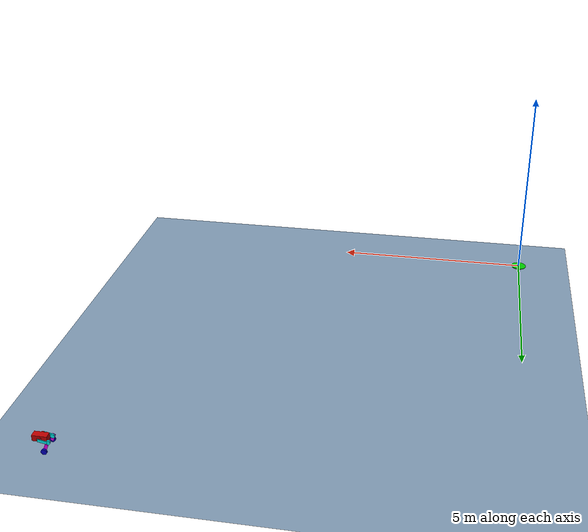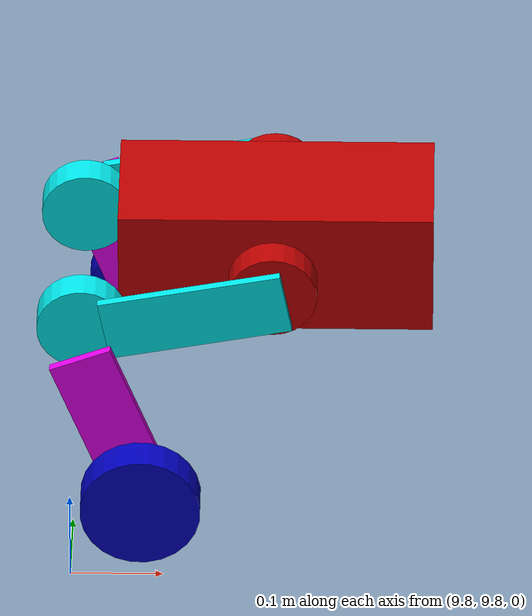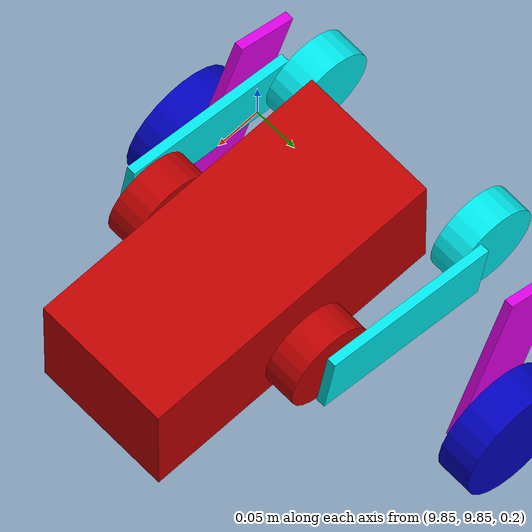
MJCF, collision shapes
<mujoco model="arx7">
  <compiler angle="radian" meshdir="./meshes/"/>
  <option timestep="0.002" integrator="RK4" gravity="0 0 -9.806" solver="Newton" noslip_iterations="0"/>
  <size njmax="10000" nconmax="10000"/>
  <default>
    <geom contype="1" conaffinity="1" rgba="0.5 0.6 0.7 1" margin="0.001" group="0"/>
    <motor gear="20" ctrllimited="true" ctrlrange="-100 100" />
    <position gear="10" ctrllimited="true" kp="5"/>
    <joint limited="true" frictionloss="0.5" damping="45" armature="0.1"/>
  </default>

  <asset>
    <mesh name="base_link" file="chassis/base_link.STL"/>
    <mesh name="left_thigh" file="chassis/left_thigh.STL"/>
    <mesh name="left_shin" file="chassis/left_shin.STL"/>
    <mesh name="left_wheel" file="chassis/left_wheel.STL"/>
    <mesh name="right_thigh" file="chassis/right_thigh.STL"/>
    <mesh name="right_shin" file="chassis/right_shin.STL"/>
    <mesh name="right_wheel" file="chassis/right_wheel.STL"/>

    <mesh name="stair1" file="stair/stair1.STL"/>
    <mesh name="stair2" file="stair/stair2.STL"/>
    <mesh name="stair3" file="stair/stair3.STL"/>
    <mesh name="stair4" file="stair/stair4.STL"/>
    <mesh name="stair5" file="stair/stair5.STL"/>
  </asset>

  <asset>
    <texture name="grid" type="2d" builtin="checker" rgb1=".9 .8 .7" rgb2=".4 .4 .4" width="300" height="300" mark="edge" markrgb=".2 .3 .4"/>
    <material name="grid" texture="grid" texrepeat="2 2" texuniform="true" reflectance=".2"/>
  </asset>

  <visual>
    <global offwidth="1920" offheight="1080"/>
    <rgba com="0.502 1.0 0 0.5" contactforce="0.98 0.4 0.4 0.7" contactpoint="1.0 1.0 0.6 0.4"/>
    <scale com="0.2" forcewidth="0.035" contactwidth="0.10" contactheight="0.04"/>
  </visual>

  <worldbody>
    <light directional="true" diffuse=".8 .8 .8" pos="0 0 10" dir="0 0 -10"/>
    <light pos="0.5 -.4 1." dir="1 2 -1.5" diffuse=".6 .6 .6"/>
    <camera name="top" pos="0. 0. 25." xyaxes="1.000 0.0 0.000 0.0 1.000 0.017"/>
    <geom name="ground" type="plane" pos="0 0 0" size="20 20 0.1" material="grid" conaffinity='0' solref='0 -1000'/>

    <body name='end_ref' pos='0 0 0'>
      <joint name='end_x' type='slide' axis='1 0 0' limited='true' range='-20 20' />
      <joint name='end_y' type='slide' axis='0 1 0' limited='true' range='-20 20' />
      <geom name="end" type="cylinder" pos="-0 -0 .0" size="0.2 0.01 0" rgba="0. 0.8 0. 1" contype='0' conaffinity="0"/>
    </body>

    <!-- ======= ROBOT ======= -->
    <body name="base_link" pos="10. 10. 0.25" euler="0 0 0">
      <camera name="track" mode="trackcom" fovy="45" pos="-3 -3 0.35" xyaxes="0.5 -0.5 0 0 0 1"/>
      <inertial pos="0.018885 0.00062964 0.06018" quat="-0.064773 0.618315 0.0968439 0.777246" mass="4.6733" diaginertia="0.054592 0.0348635 0.0323885"/>
      <joint name="floating_base" type="free" limited="false" frictionloss="0.001" damping="0.01" armature="0."/>

      <geom name="base1" type="mesh" contype="0" conaffinity="0" group="1" density="0" rgba="0.75294 0 0 1" mesh="base_link"/>
      <geom name="base2" size="0.17 0.077 0.07" pos="0.02 0 0.06" type="box" rgba="0.75294 0 0 0.000987654321"/>
      <geom name="base3" size="0.048 0.0175" pos="0.017241 0.106 0.0613" quat="0.499998 -0.500002 0.5 0.5" type="cylinder" rgba="0.75294 0 0 0.000987654321"/>
      <geom name="base4" size="0.048 0.0175" pos="0.017241 -0.106 0.0613" quat="0.499998 -0.500002 0.5 0.5" type="cylinder" rgba="0.75294 0 0 0.000987654321"/>
      <site name="imu" pos="0 0 0"/>
      <body name="left_thigh" pos="0.017241 0.13399 0.0613" euler="-1.57 0 2.95">
        <inertial pos="0.17494 0.0025294 0.012308" quat="0.0283574 0.728032 0.00169629 0.684954" mass="1.3343" diaginertia="0.00985328 0.00920167 0.00123438"/>
        <joint name="left_hip" pos="0 0 0" axis="0 0 1" range="-1.5 1.5"/>
        <geom name="left_thigh1" type="mesh" contype="0" conaffinity="0" group="1" density="0" rgba="0.89804 0.91765 0 1" mesh="left_thigh"/>
        <geom name="left_thigh2" size="0.1 0.035 0.005" pos="0.085 0 0" type="box" rgba="0 0.91765 0.92941 0.000987654321"/>
        <geom name="left_thigh3" size="0.048 0.0175" pos="0.21 0 -0.02375" type="cylinder" rgba="0 0.91765 0.92941 0.000987654321"/>
        <body name="left_shin" pos="0.21 0 0.0475" euler="0 0 -1.75">
          <inertial pos="0.15612 0.00046249 0.020119" quat="-0.0169558 0.755863 -0.00997261 0.654434" mass="0.94398" diaginertia="0.00396686 0.00358627 0.000682696"/>
          <joint name="left_knee" pos="0 0 0" axis="0 0 1" range="-1.5 1.5"/>
          <geom type="mesh" contype="0" conaffinity="0" group="1" density="0" rgba="0.89804 0.91765 0 1" mesh="left_shin"/>
          <geom size="0.1 0.035 0.005" pos="0.1 0 0" type="box" rgba="0.89804 0 0.92941 0.000987654321"/>
          <body name="left_wheel" pos="0.18 0 0.0305">
            <inertial pos="0 0 0.0012686" quat="0.5 0.5 -0.5 0.5" mass="0.44583" diaginertia="0.0014254 0.00076522 0.00076522"/>
            <joint name="left_ankle" pos="0 0 0" axis="0 0 1" limited="false"/>
            <geom type="mesh" contype="0" conaffinity="0" group="1" density="0" rgba="0.75294 0 0 1" mesh="left_wheel"/>
            <geom size="0.065 0.02" type="cylinder" rgba="0 0 0.75294 0.000987654321"/>
          </body>
        </body>
      </body>
      <body name="right_thigh" pos="0.017241 -0.13501 0.0613" euler="-1.57 0 2.95">
        <inertial pos="0.17494 0.0025279 -0.012308" quat="-0.00169159 0.684955 -0.0283402 0.728032" mass="1.3343" diaginertia="0.00985329 0.00920166 0.00123441"/>
        <joint name="right_hip" pos="0 0 0" axis="0 0 1" range="-1.5 1.5"/>
        <geom name="right_thigh1" type="mesh" contype="0" conaffinity="0" group="1" density="0" rgba="0.89804 0.91765 0 1" mesh="right_thigh"/>
        <geom name="right_thigh2" size="0.1 0.035 0.005" pos="0.085 0 0" type="box" rgba="0 0.91765 0.92941 0.000987654321"/>
        <geom name="right_thigh3" size="0.048 0.0175" pos="0.21 0 0.02375" type="cylinder" rgba="0 0.91765 0.92941 0.000987654321"/>
        <body name="right_shin" pos="0.21 0 -0.0475" euler="0 0 -1.75">
          <inertial pos="0.15612 0.00046556 -0.020119" quat="0.00996675 0.654435 0.0169079 0.755863" mass="0.94398" diaginertia="0.00396686 0.00358627 0.000682701"/>
          <joint name="right_knee" pos="0 0 0" axis="0 0 1" range="-1.5 1.5"/>
          <geom type="mesh" contype="0" conaffinity="0" group="1" density="0" rgba="0.89804 0.91765 0 1" mesh="right_shin"/>
          <geom size="0.1 0.035 0.005" pos="0.1 0 0" type="box" rgba="0.89804 0 0.92941 0.000987654321"/>
          <body name="right_wheel" pos="0.18 0 -0.0305">
            <inertial pos="0 0 -0.0012686" quat="0.5 0.5 -0.5 0.5" mass="0.44583" diaginertia="0.0014254 0.00076522 0.00076522"/>
            <joint name="right_ankle" pos="0 0 0" axis="0 0 1" limited="false"/>
            <geom type="mesh" contype="0" conaffinity="0" group="1" density="0" rgba="0.75294 0 0 1" mesh="right_wheel"/>
            <geom size="0.065 0.02" type="cylinder" rgba="0 0 0.75294 0.000987654321"/>
          </body>
        </body>
      </body>
    </body>
  </worldbody>
  <actuator>
    <position name="left_hip_motor" joint="left_hip" ctrlrange="-1.5 1.5" />
    <position name="left_knee_motor" joint="left_knee" ctrlrange="-1.5 1.5"/>
    <motor name="left_ankle_motor" joint="left_ankle"/>
    <position name="right_hip_motor" joint="right_hip" ctrlrange="-1.5 1.5" />
    <position name="right_knee_motor" joint="right_knee" ctrlrange="-1.5 1.5"/>
    <motor name="right_ankle_motor" joint="right_ankle"/>
  </actuator>

  <sensor>
    <!-- The sensor sequence cannot be changed -->
    <jointpos name='target_x' joint='end_x' />
    <jointpos name='target_y' joint='end_y' />
    <framepos name='base_pos' objtype='body' objname='base_link' />
    <framequat name='base_ori' objtype='body' objname='base_link' />
    <jointpos name='left_hip_pos' joint='left_hip' />
    <jointpos name='left_knee_pos' joint='left_knee' />
    <jointpos name='right_hip_pos' joint='right_hip' />
    <jointpos name='right_knee_pos' joint='right_knee' />
    <jointvel name='left_wheel' joint='left_ankle' />
    <jointvel name='right_wheel' joint='right_ankle' />
    <velocimeter name="Base_Linear_vel" site="imu" />
    <accelerometer name="Base_Linear_acc" site="imu" />
    <gyro name='Base_Angular_vel' site='imu'/>
  </sensor>

</mujoco>
